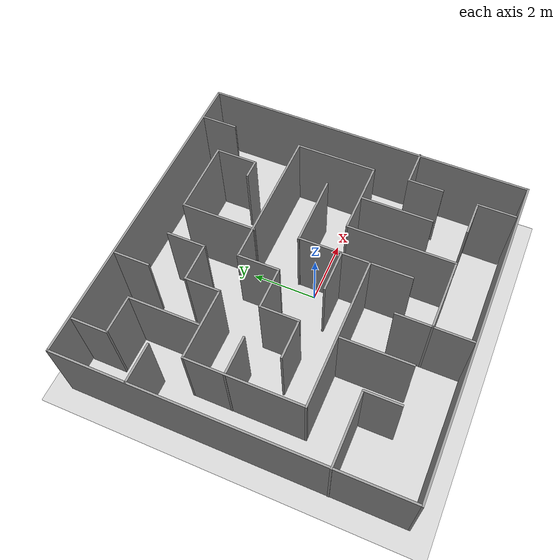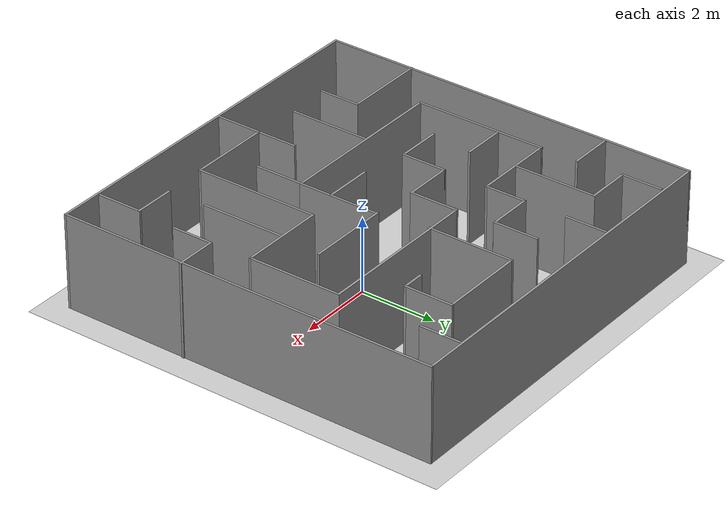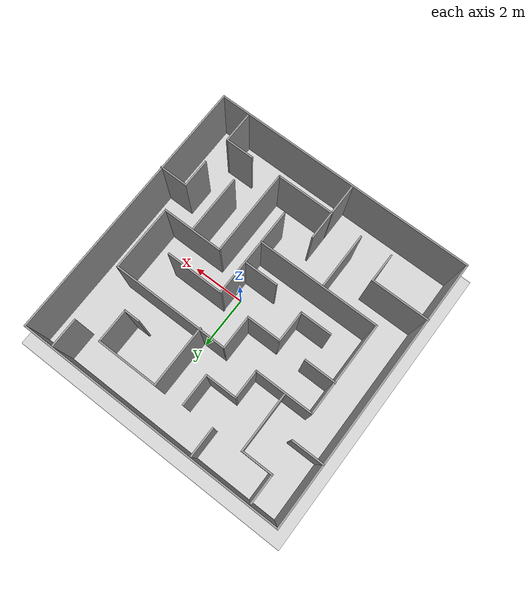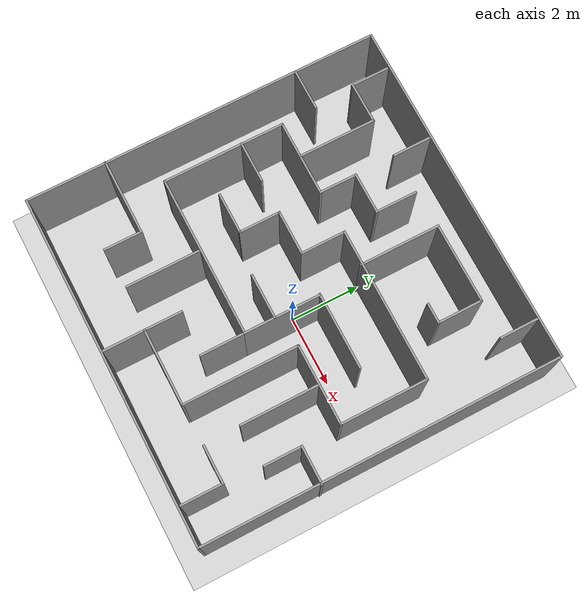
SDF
<?xml version='1.0' encoding='utf-8'?>
<sdf version="1.6">
  <world name="default">
    <light name="sun" type="directional">
      <cast_shadows>1</cast_shadows>
      <pose frame="">0 0 10 0 -0 0</pose>
      <diffuse>0.8 0.8 0.8 1</diffuse>
      <specular>0.2 0.2 0.2 1</specular>
      <attenuation>
        <range>1000</range>
        <constant>0.9</constant>
        <linear>0.01</linear>
        <quadratic>0.001</quadratic>
      </attenuation>
      <direction>-0.5 0.1 -0.9</direction>
    </light>
    <model name="ground_plane">
      <static>1</static>
      <link name="link">
        <collision name="collision">
          <geometry>
            <plane>
              <normal>0 0 1</normal>
              <size>100 100</size>
            </plane>
          </geometry>
          <surface>
            <friction>
              <ode>
                <mu>100</mu>
                <mu2>50</mu2>
              </ode>
              <torsional>
                <ode />
              </torsional>
            </friction>
            <contact>
              <ode />
            </contact>
            <bounce />
          </surface>
          <max_contacts>10</max_contacts>
        </collision>
        <visual name="visual">
          <cast_shadows>0</cast_shadows>
          <geometry>
            <plane>
              <normal>0 0 1</normal>
              <size>100 100</size>
            </plane>
          </geometry>
          <material>
            <script>
              <uri>file://media/materials/scripts/gazebo.material</uri>
              <name>Gazebo/Grey</name>
            </script>
          </material>
        </visual>
        <self_collide>0</self_collide>
        <enable_wind>0</enable_wind>
        <kinematic>0</kinematic>
      </link>
    </model>
    <gravity>0 0 -9.8</gravity>
    <magnetic_field>6e-06 2.3e-05 -4.2e-05</magnetic_field>
    <atmosphere type="adiabatic" />
    <physics name="default_physics" default="0" type="ode">
      <max_step_size>0.01</max_step_size>
      <real_time_factor>1</real_time_factor>
      <real_time_update_rate>100</real_time_update_rate>
    </physics>
    <scene>
      <ambient>0.4 0.4 0.4 1</ambient>
      <background>0.7 0.7 0.7 1</background>
      <shadows>1</shadows>
    </scene>
    <wind />
    <spherical_coordinates>
      <surface_model>EARTH_WGS84</surface_model>
      <latitude_deg>0</latitude_deg>
      <longitude_deg>0</longitude_deg>
      <elevation>0</elevation>
      <heading_deg>0</heading_deg>
    </spherical_coordinates>
    <model name="mazetest">
      <pose frame="">-0.464738 0.151607 0 0 -0 0</pose>
      <link name="Wall_10">
        <collision name="Wall_10_Collision">
          <geometry>
            <box>
              <size>10.2 0.06 2.5</size>
            </box>
          </geometry>
          <pose frame="">0 0 1.25 0 -0 0</pose>
          <max_contacts>10</max_contacts>
          <surface>
            <contact>
              <ode />
            </contact>
            <bounce />
            <friction>
              <torsional>
                <ode />
              </torsional>
              <ode />
            </friction>
          </surface>
        </collision>
        <visual name="Wall_10_Visual">
          <pose frame="">0 0 1.25 0 -0 0</pose>
          <geometry>
            <box>
              <size>10.2 0.06 2.5</size>
            </box>
          </geometry>
          <material>
            <script>
              <uri>file://media/materials/scripts/gazebo.material</uri>
              <name>Gazebo/Grey</name>
            </script>
            <ambient>1 1 1 1</ambient>
          </material>
          <meta>
            <layer>0</layer>
          </meta>
        </visual>
        <pose frame="">4.96244 0 0 0 0 -1.5708</pose>
        <self_collide>0</self_collide>
        <enable_wind>0</enable_wind>
        <kinematic>0</kinematic>
      </link>
      <link name="Wall_11">
        <collision name="Wall_11_Collision">
          <geometry>
            <box>
              <size>10 0.06 2.5</size>
            </box>
          </geometry>
          <pose frame="">0 0 1.25 0 -0 0</pose>
          <max_contacts>10</max_contacts>
          <surface>
            <contact>
              <ode />
            </contact>
            <bounce />
            <friction>
              <torsional>
                <ode />
              </torsional>
              <ode />
            </friction>
          </surface>
        </collision>
        <visual name="Wall_11_Visual">
          <pose frame="">0 0 1.25 0 -0 0</pose>
          <geometry>
            <box>
              <size>10 0.06 2.5</size>
            </box>
          </geometry>
          <material>
            <script>
              <uri>file://media/materials/scripts/gazebo.material</uri>
              <name>Gazebo/Grey</name>
            </script>
            <ambient>1 1 1 1</ambient>
          </material>
          <meta>
            <layer>0</layer>
          </meta>
        </visual>
        <pose frame="">-0.007571 -5.07 0 0 0 3.14159</pose>
        <self_collide>0</self_collide>
        <enable_wind>0</enable_wind>
        <kinematic>0</kinematic>
      </link>
      <link name="Wall_12">
        <collision name="Wall_12_Collision">
          <geometry>
            <box>
              <size>10.2 0.06 2.5</size>
            </box>
          </geometry>
          <pose frame="">0 0 1.25 0 -0 0</pose>
          <max_contacts>10</max_contacts>
          <surface>
            <contact>
              <ode />
            </contact>
            <bounce />
            <friction>
              <torsional>
                <ode />
              </torsional>
              <ode />
            </friction>
          </surface>
        </collision>
        <visual name="Wall_12_Visual">
          <pose frame="">0 0 1.25 0 -0 0</pose>
          <geometry>
            <box>
              <size>10.2 0.06 2.5</size>
            </box>
          </geometry>
          <material>
            <script>
              <uri>file://media/materials/scripts/gazebo.material</uri>
              <name>Gazebo/Grey</name>
            </script>
            <ambient>1 1 1 1</ambient>
          </material>
          <meta>
            <layer>0</layer>
          </meta>
        </visual>
        <pose frame="">-4.97756 0 0 0 0 1.5708</pose>
        <self_collide>0</self_collide>
        <enable_wind>0</enable_wind>
        <kinematic>0</kinematic>
      </link>
      <link name="Wall_14">
        <collision name="Wall_14_Collision">
          <geometry>
            <box>
              <size>1.1 0.06 2.5</size>
            </box>
          </geometry>
          <pose frame="">0 0 1.25 0 -0 0</pose>
          <max_contacts>10</max_contacts>
          <surface>
            <contact>
              <ode />
            </contact>
            <bounce />
            <friction>
              <torsional>
                <ode />
              </torsional>
              <ode />
            </friction>
          </surface>
        </collision>
        <visual name="Wall_14_Visual">
          <pose frame="">0 0 1.25 0 -0 0</pose>
          <geometry>
            <box>
              <size>1.1 0.06 2.5</size>
            </box>
          </geometry>
          <material>
            <script>
              <uri>file://media/materials/scripts/gazebo.material</uri>
              <name>Gazebo/Grey</name>
            </script>
            <ambient>1 1 1 1</ambient>
          </material>
          <meta>
            <layer>0</layer>
          </meta>
        </visual>
        <pose frame="">-3.930368 4.46508 0 0 0 -1.5708</pose>
        <self_collide>0</self_collide>
        <enable_wind>0</enable_wind>
        <kinematic>0</kinematic>
      </link>
      <link name="Wall_15">
        <collision name="Wall_15_Collision">
          <geometry>
            <box>
              <size>1.2 0.06 2.5</size>
            </box>
          </geometry>
          <pose frame="">0 0 1.25 0 -0 0</pose>
          <max_contacts>10</max_contacts>
          <surface>
            <contact>
              <ode />
            </contact>
            <bounce />
            <friction>
              <torsional>
                <ode />
              </torsional>
              <ode />
            </friction>
          </surface>
        </collision>
        <visual name="Wall_15_Visual">
          <pose frame="">0 0 1.25 0 -0 0</pose>
          <geometry>
            <box>
              <size>1.2 0.06 2.5</size>
            </box>
          </geometry>
          <material>
            <script>
              <uri>file://media/materials/scripts/gazebo.material</uri>
              <name>Gazebo/Grey</name>
            </script>
            <ambient>1 1 1 1</ambient>
          </material>
          <meta>
            <layer>0</layer>
          </meta>
        </visual>
        <pose frame="">-3.360368 3.945092 0 0 0 0</pose>
        <self_collide>0</self_collide>
        <enable_wind>0</enable_wind>
        <kinematic>0</kinematic>
      </link>
      <link name="Wall_16">
        <collision name="Wall_16_Collision">
          <geometry>
            <box>
              <size>2.2 0.06 2.5</size>
            </box>
          </geometry>
          <pose frame="">0 0 1.25 0 -0 0</pose>
          <max_contacts>10</max_contacts>
          <surface>
            <contact>
              <ode />
            </contact>
            <bounce />
            <friction>
              <torsional>
                <ode />
              </torsional>
              <ode />
            </friction>
          </surface>
        </collision>
        <visual name="Wall_16_Visual">
          <pose frame="">0 0 1.25 0 -0 0</pose>
          <geometry>
            <box>
              <size>2.2 0.06 2.5</size>
            </box>
          </geometry>
          <material>
            <script>
              <uri>file://media/materials/scripts/gazebo.material</uri>
              <name>Gazebo/Grey</name>
            </script>
            <ambient>1 1 1 1</ambient>
          </material>
          <meta>
            <layer>0</layer>
          </meta>
        </visual>
        <pose frame="">-2.790368 2.875092 0 0 0 -1.5708</pose>
        <self_collide>0</self_collide>
        <enable_wind>0</enable_wind>
        <kinematic>0</kinematic>
      </link>
      <link name="Wall_18">
        <collision name="Wall_18_Collision">
          <geometry>
            <box>
              <size>1.2 0.06 2.5</size>
            </box>
          </geometry>
          <pose frame="">0 0 1.25 0 -0 0</pose>
          <max_contacts>10</max_contacts>
          <surface>
            <contact>
              <ode />
            </contact>
            <bounce />
            <friction>
              <torsional>
                <ode />
              </torsional>
              <ode />
            </friction>
          </surface>
        </collision>
        <visual name="Wall_18_Visual">
          <pose frame="">0 0 1.25 0 -0 0</pose>
          <geometry>
            <box>
              <size>1.2 0.06 2.5</size>
            </box>
          </geometry>
          <material>
            <script>
              <uri>file://media/materials/scripts/gazebo.material</uri>
              <name>Gazebo/Grey</name>
            </script>
            <ambient>1 1 1 1</ambient>
          </material>
          <meta>
            <layer>0</layer>
          </meta>
        </visual>
        <pose frame="">-4.38732 2.777472 0 0 0 0</pose>
        <self_collide>0</self_collide>
        <enable_wind>0</enable_wind>
        <kinematic>0</kinematic>
      </link>
      <link name="Wall_20">
        <collision name="Wall_20_Collision">
          <geometry>
            <box>
              <size>1.2 0.06 2.5</size>
            </box>
          </geometry>
          <pose frame="">0 0 1.25 0 -0 0</pose>
          <max_contacts>10</max_contacts>
          <surface>
            <contact>
              <ode />
            </contact>
            <bounce />
            <friction>
              <torsional>
                <ode />
              </torsional>
              <ode />
            </friction>
          </surface>
        </collision>
        <visual name="Wall_20_Visual">
          <pose frame="">0 0 1.25 0 -0 0</pose>
          <geometry>
            <box>
              <size>1.2 0.06 2.5</size>
            </box>
          </geometry>
          <material>
            <script>
              <uri>file://media/materials/scripts/gazebo.material</uri>
              <name>Gazebo/Grey</name>
            </script>
            <ambient>1 1 1 1</ambient>
          </material>
          <meta>
            <layer>0</layer>
          </meta>
        </visual>
        <pose frame="">-0.523912 3.381988 0 0 0 -1.5708</pose>
        <self_collide>0</self_collide>
        <enable_wind>0</enable_wind>
        <kinematic>0</kinematic>
      </link>
      <link name="Wall_21">
        <collision name="Wall_21_Collision">
          <geometry>
            <box>
              <size>1.2 0.06 2.5</size>
            </box>
          </geometry>
          <pose frame="">0 0 1.25 0 -0 0</pose>
          <max_contacts>10</max_contacts>
          <surface>
            <contact>
              <ode />
            </contact>
            <bounce />
            <friction>
              <torsional>
                <ode />
              </torsional>
              <ode />
            </friction>
          </surface>
        </collision>
        <visual name="Wall_21_Visual">
          <pose frame="">0 0 1.25 0 -0 0</pose>
          <geometry>
            <box>
              <size>1.2 0.06 2.5</size>
            </box>
          </geometry>
          <material>
            <script>
              <uri>file://media/materials/scripts/gazebo.material</uri>
              <name>Gazebo/Grey</name>
            </script>
            <ambient>1 1 1 1</ambient>
          </material>
          <meta>
            <layer>0</layer>
          </meta>
        </visual>
        <pose frame="">-1.093912 2.811992 0 0 0 3.14159</pose>
        <self_collide>0</self_collide>
        <enable_wind>0</enable_wind>
        <kinematic>0</kinematic>
      </link>
      <link name="Wall_22">
        <collision name="Wall_22_Collision">
          <geometry>
            <box>
              <size>1.1 0.06 2.5</size>
            </box>
          </geometry>
          <pose frame="">0 0 1.25 0 -0 0</pose>
          <max_contacts>10</max_contacts>
          <surface>
            <contact>
              <ode />
            </contact>
            <bounce />
            <friction>
              <torsional>
                <ode />
              </torsional>
              <ode />
            </friction>
          </surface>
        </collision>
        <visual name="Wall_22_Visual">
          <pose frame="">0 0 1.25 0 -0 0</pose>
          <geometry>
            <box>
              <size>1.1 0.06 2.5</size>
            </box>
          </geometry>
          <material>
            <script>
              <uri>file://media/materials/scripts/gazebo.material</uri>
              <name>Gazebo/Grey</name>
            </script>
            <ambient>1 1 1 1</ambient>
          </material>
          <meta>
            <layer>0</layer>
          </meta>
        </visual>
        <pose frame="">-1.663912 2.291988 0 0 0 -1.5708</pose>
        <self_collide>0</self_collide>
        <enable_wind>0</enable_wind>
        <kinematic>0</kinematic>
      </link>
      <link name="Wall_23">
        <collision name="Wall_23_Collision">
          <geometry>
            <box>
              <size>2.2 0.06 2.5</size>
            </box>
          </geometry>
          <pose frame="">0 0 1.25 0 -0 0</pose>
          <max_contacts>10</max_contacts>
          <surface>
            <contact>
              <ode />
            </contact>
            <bounce />
            <friction>
              <torsional>
                <ode />
              </torsional>
              <ode />
            </friction>
          </surface>
        </collision>
        <visual name="Wall_23_Visual">
          <pose frame="">0 0 1.25 0 -0 0</pose>
          <geometry>
            <box>
              <size>2.2 0.06 2.5</size>
            </box>
          </geometry>
          <material>
            <script>
              <uri>file://media/materials/scripts/gazebo.material</uri>
              <name>Gazebo/Grey</name>
            </script>
            <ambient>1 1 1 1</ambient>
          </material>
          <meta>
            <layer>0</layer>
          </meta>
        </visual>
        <pose frame="">-2.733912 1.771988 0 0 0 3.14159</pose>
        <self_collide>0</self_collide>
        <enable_wind>0</enable_wind>
        <kinematic>0</kinematic>
      </link>
      <link name="Wall_24">
        <collision name="Wall_24_Collision">
          <geometry>
            <box>
              <size>3.5 0.06 2.5</size>
            </box>
          </geometry>
          <pose frame="">0 0 1.25 0 -0 0</pose>
          <max_contacts>10</max_contacts>
          <surface>
            <contact>
              <ode />
            </contact>
            <bounce />
            <friction>
              <torsional>
                <ode />
              </torsional>
              <ode />
            </friction>
          </surface>
        </collision>
        <visual name="Wall_24_Visual">
          <pose frame="">0 0 1.25 0 -0 0</pose>
          <geometry>
            <box>
              <size>3.5 0.06 2.5</size>
            </box>
          </geometry>
          <material>
            <script>
              <uri>file://media/materials/scripts/gazebo.material</uri>
              <name>Gazebo/Grey</name>
            </script>
            <ambient>1 1 1 1</ambient>
          </material>
          <meta>
            <layer>0</layer>
          </meta>
        </visual>
        <pose frame="">-3.803912 0.05199 0 0 0 -1.5708</pose>
        <self_collide>0</self_collide>
        <enable_wind>0</enable_wind>
        <kinematic>0</kinematic>
      </link>
      <link name="Wall_25">
        <collision name="Wall_25_Collision">
          <geometry>
            <box>
              <size>4.60472 0.06 2.5</size>
            </box>
          </geometry>
          <pose frame="">0 0 1.25 0 -0 0</pose>
          <max_contacts>10</max_contacts>
          <surface>
            <contact>
              <ode />
            </contact>
            <bounce />
            <friction>
              <torsional>
                <ode />
              </torsional>
              <ode />
            </friction>
          </surface>
        </collision>
        <visual name="Wall_25_Visual">
          <pose frame="">0 0 1.25 0 -0 0</pose>
          <geometry>
            <box>
              <size>4.60472 0.06 2.5</size>
            </box>
          </geometry>
          <material>
            <script>
              <uri>file://media/materials/scripts/gazebo.material</uri>
              <name>Gazebo/Grey</name>
            </script>
            <ambient>1 1 1 1</ambient>
          </material>
          <meta>
            <layer>0</layer>
          </meta>
        </visual>
        <pose frame="">-1.53156 -1.668008 0 0 0 0</pose>
        <self_collide>0</self_collide>
        <enable_wind>0</enable_wind>
        <kinematic>0</kinematic>
      </link>
      <link name="Wall_26">
        <collision name="Wall_26_Collision">
          <geometry>
            <box>
              <size>2.2 0.06 2.5</size>
            </box>
          </geometry>
          <pose frame="">0 0 1.25 0 -0 0</pose>
          <max_contacts>10</max_contacts>
          <surface>
            <contact>
              <ode />
            </contact>
            <bounce />
            <friction>
              <torsional>
                <ode />
              </torsional>
              <ode />
            </friction>
          </surface>
        </collision>
        <visual name="Wall_26_Visual">
          <pose frame="">0 0 1.25 0 -0 0</pose>
          <geometry>
            <box>
              <size>2.2 0.06 2.5</size>
            </box>
          </geometry>
          <material>
            <script>
              <uri>file://media/materials/scripts/gazebo.material</uri>
              <name>Gazebo/Grey</name>
            </script>
            <ambient>1 1 1 1</ambient>
          </material>
          <meta>
            <layer>0</layer>
          </meta>
        </visual>
        <pose frame="">0.759404 -0.598012 0 0 0 1.5708</pose>
        <self_collide>0</self_collide>
        <enable_wind>0</enable_wind>
        <kinematic>0</kinematic>
      </link>
      <link name="Wall_27">
        <collision name="Wall_27_Collision">
          <geometry>
            <box>
              <size>2.195296 0.06 2.5</size>
            </box>
          </geometry>
          <pose frame="">0 0 1.25 0 -0 0</pose>
          <max_contacts>10</max_contacts>
          <surface>
            <contact>
              <ode />
            </contact>
            <bounce />
            <friction>
              <torsional>
                <ode />
              </torsional>
              <ode />
            </friction>
          </surface>
        </collision>
        <visual name="Wall_27_Visual">
          <pose frame="">0 0 1.25 0 -0 0</pose>
          <geometry>
            <box>
              <size>2.195296 0.06 2.5</size>
            </box>
          </geometry>
          <material>
            <script>
              <uri>file://media/materials/scripts/gazebo.material</uri>
              <name>Gazebo/Grey</name>
            </script>
            <ambient>1 1 1 1</ambient>
          </material>
          <meta>
            <layer>0</layer>
          </meta>
        </visual>
        <pose frame="">1.80844 0.471988 0 0 0 0</pose>
        <self_collide>0</self_collide>
        <enable_wind>0</enable_wind>
        <kinematic>0</kinematic>
      </link>
      <link name="Wall_29">
        <collision name="Wall_29_Collision">
          <geometry>
            <box>
              <size>1.1 0.06 2.5</size>
            </box>
          </geometry>
          <pose frame="">0 0 1.25 0 -0 0</pose>
          <max_contacts>10</max_contacts>
          <surface>
            <contact>
              <ode />
            </contact>
            <bounce />
            <friction>
              <torsional>
                <ode />
              </torsional>
              <ode />
            </friction>
          </surface>
        </collision>
        <visual name="Wall_29_Visual">
          <pose frame="">0 0 1.25 0 -0 0</pose>
          <geometry>
            <box>
              <size>1.1 0.06 2.5</size>
            </box>
          </geometry>
          <material>
            <script>
              <uri>file://media/materials/scripts/gazebo.material</uri>
              <name>Gazebo/Grey</name>
            </script>
            <ambient>1 1 1 1</ambient>
          </material>
          <meta>
            <layer>0</layer>
          </meta>
        </visual>
        <pose frame="">-1.675824 4.48288 0 0 0 -1.5708</pose>
        <self_collide>0</self_collide>
        <enable_wind>0</enable_wind>
        <kinematic>0</kinematic>
      </link>
      <link name="Wall_31">
        <collision name="Wall_31_Collision">
          <geometry>
            <box>
              <size>1.2 0.06 2.5</size>
            </box>
          </geometry>
          <pose frame="">0 0 1.25 0 -0 0</pose>
          <max_contacts>10</max_contacts>
          <surface>
            <contact>
              <ode />
            </contact>
            <bounce />
            <friction>
              <torsional>
                <ode />
              </torsional>
              <ode />
            </friction>
          </surface>
        </collision>
        <visual name="Wall_31_Visual">
          <pose frame="">0 0 1.25 0 -0 0</pose>
          <geometry>
            <box>
              <size>1.2 0.06 2.5</size>
            </box>
          </geometry>
          <material>
            <script>
              <uri>file://media/materials/scripts/gazebo.material</uri>
              <name>Gazebo/Grey</name>
            </script>
            <ambient>1 1 1 1</ambient>
          </material>
          <meta>
            <layer>0</layer>
          </meta>
        </visual>
        <pose frame="">-3.242768 0.5734 0 0 0 0</pose>
        <self_collide>0</self_collide>
        <enable_wind>0</enable_wind>
        <kinematic>0</kinematic>
      </link>
      <link name="Wall_33">
        <collision name="Wall_33_Collision">
          <geometry>
            <box>
              <size>1.2 0.06 2.5</size>
            </box>
          </geometry>
          <pose frame="">0 0 1.25 0 -0 0</pose>
          <max_contacts>10</max_contacts>
          <surface>
            <contact>
              <ode />
            </contact>
            <bounce />
            <friction>
              <torsional>
                <ode />
              </torsional>
              <ode />
            </friction>
          </surface>
        </collision>
        <visual name="Wall_33_Visual">
          <pose frame="">0 0 1.25 0 -0 0</pose>
          <geometry>
            <box>
              <size>1.2 0.06 2.5</size>
            </box>
          </geometry>
          <material>
            <script>
              <uri>file://media/materials/scripts/gazebo.material</uri>
              <name>Gazebo/Grey</name>
            </script>
            <ambient>1 1 1 1</ambient>
          </material>
          <meta>
            <layer>0</layer>
          </meta>
        </visual>
        <pose frame="">-2.238376 -0.566884 0 0 0 0</pose>
        <self_collide>0</self_collide>
        <enable_wind>0</enable_wind>
        <kinematic>0</kinematic>
      </link>
      <link name="Wall_34">
        <collision name="Wall_34_Collision">
          <geometry>
            <box>
              <size>1.2 0.06 2.5</size>
            </box>
          </geometry>
          <pose frame="">0 0 1.25 0 -0 0</pose>
          <max_contacts>10</max_contacts>
          <surface>
            <contact>
              <ode />
            </contact>
            <bounce />
            <friction>
              <torsional>
                <ode />
              </torsional>
              <ode />
            </friction>
          </surface>
        </collision>
        <visual name="Wall_34_Visual">
          <pose frame="">0 0 1.25 0 -0 0</pose>
          <geometry>
            <box>
              <size>1.2 0.06 2.5</size>
            </box>
          </geometry>
          <material>
            <script>
              <uri>file://media/materials/scripts/gazebo.material</uri>
              <name>Gazebo/Grey</name>
            </script>
            <ambient>1 1 1 1</ambient>
          </material>
          <meta>
            <layer>0</layer>
          </meta>
        </visual>
        <pose frame="">-1.668376 0.003116 0 0 0 1.5708</pose>
        <self_collide>0</self_collide>
        <enable_wind>0</enable_wind>
        <kinematic>0</kinematic>
      </link>
      <link name="Wall_35">
        <collision name="Wall_35_Collision">
          <geometry>
            <box>
              <size>1.3 0.06 2.5</size>
            </box>
          </geometry>
          <pose frame="">0 0 1.25 0 -0 0</pose>
          <max_contacts>10</max_contacts>
          <surface>
            <contact>
              <ode />
            </contact>
            <bounce />
            <friction>
              <torsional>
                <ode />
              </torsional>
              <ode />
            </friction>
          </surface>
        </collision>
        <visual name="Wall_35_Visual">
          <pose frame="">0 0 1.25 0 -0 0</pose>
          <geometry>
            <box>
              <size>1.3 0.06 2.5</size>
            </box>
          </geometry>
          <material>
            <script>
              <uri>file://media/materials/scripts/gazebo.material</uri>
              <name>Gazebo/Grey</name>
            </script>
            <ambient>1 1 1 1</ambient>
          </material>
          <meta>
            <layer>0</layer>
          </meta>
        </visual>
        <pose frame="">-1.048376 0.573116 0 0 0 0</pose>
        <self_collide>0</self_collide>
        <enable_wind>0</enable_wind>
        <kinematic>0</kinematic>
      </link>
      <link name="Wall_36">
        <collision name="Wall_36_Collision">
          <geometry>
            <box>
              <size>1.3 0.06 2.5</size>
            </box>
          </geometry>
          <pose frame="">0 0 1.25 0 -0 0</pose>
          <max_contacts>10</max_contacts>
          <surface>
            <contact>
              <ode />
            </contact>
            <bounce />
            <friction>
              <torsional>
                <ode />
              </torsional>
              <ode />
            </friction>
          </surface>
        </collision>
        <visual name="Wall_36_Visual">
          <pose frame="">0 0 1.25 0 -0 0</pose>
          <geometry>
            <box>
              <size>1.3 0.06 2.5</size>
            </box>
          </geometry>
          <material>
            <script>
              <uri>file://media/materials/scripts/gazebo.material</uri>
              <name>Gazebo/Grey</name>
            </script>
            <ambient>1 1 1 1</ambient>
          </material>
          <meta>
            <layer>0</layer>
          </meta>
        </visual>
        <pose frame="">-0.428376 1.193116 0 0 0 1.5708</pose>
        <self_collide>0</self_collide>
        <enable_wind>0</enable_wind>
        <kinematic>0</kinematic>
      </link>
      <link name="Wall_37">
        <collision name="Wall_37_Collision">
          <geometry>
            <box>
              <size>4.4 0.06 2.5</size>
            </box>
          </geometry>
          <pose frame="">0 0 1.25 0 -0 0</pose>
          <max_contacts>10</max_contacts>
          <surface>
            <contact>
              <ode />
            </contact>
            <bounce />
            <friction>
              <torsional>
                <ode />
              </torsional>
              <ode />
            </friction>
          </surface>
        </collision>
        <visual name="Wall_37_Visual">
          <pose frame="">0 0 1.25 0 -0 0</pose>
          <geometry>
            <box>
              <size>4.4 0.06 2.5</size>
            </box>
          </geometry>
          <material>
            <script>
              <uri>file://media/materials/scripts/gazebo.material</uri>
              <name>Gazebo/Grey</name>
            </script>
            <ambient>1 1 1 1</ambient>
          </material>
          <meta>
            <layer>0</layer>
          </meta>
        </visual>
        <pose frame="">1.741624 1.813116 0 0 0 0</pose>
        <self_collide>0</self_collide>
        <enable_wind>0</enable_wind>
        <kinematic>0</kinematic>
      </link>
      <link name="Wall_38">
        <collision name="Wall_38_Collision">
          <geometry>
            <box>
              <size>2.5 0.06 2.5</size>
            </box>
          </geometry>
          <pose frame="">0 0 1.25 0 -0 0</pose>
          <max_contacts>10</max_contacts>
          <surface>
            <contact>
              <ode />
            </contact>
            <bounce />
            <friction>
              <torsional>
                <ode />
              </torsional>
              <ode />
            </friction>
          </surface>
        </collision>
        <visual name="Wall_38_Visual">
          <pose frame="">0 0 1.25 0 -0 0</pose>
          <geometry>
            <box>
              <size>2.5 0.06 2.5</size>
            </box>
          </geometry>
          <material>
            <script>
              <uri>file://media/materials/scripts/gazebo.material</uri>
              <name>Gazebo/Grey</name>
            </script>
            <ambient>1 1 1 1</ambient>
          </material>
          <meta>
            <layer>0</layer>
          </meta>
        </visual>
        <pose frame="">3.911624 0.593116 0 0 0 -1.5708</pose>
        <self_collide>0</self_collide>
        <enable_wind>0</enable_wind>
        <kinematic>0</kinematic>
      </link>
      <link name="Wall_39">
        <collision name="Wall_39_Collision">
          <geometry>
            <box>
              <size>2.3 0.06 2.5</size>
            </box>
          </geometry>
          <pose frame="">0 0 1.25 0 -0 0</pose>
          <max_contacts>10</max_contacts>
          <surface>
            <contact>
              <ode />
            </contact>
            <bounce />
            <friction>
              <torsional>
                <ode />
              </torsional>
              <ode />
            </friction>
          </surface>
        </collision>
        <visual name="Wall_39_Visual">
          <pose frame="">0 0 1.25 0 -0 0</pose>
          <geometry>
            <box>
              <size>2.3 0.06 2.5</size>
            </box>
          </geometry>
          <material>
            <script>
              <uri>file://media/materials/scripts/gazebo.material</uri>
              <name>Gazebo/Grey</name>
            </script>
            <ambient>1 1 1 1</ambient>
          </material>
          <meta>
            <layer>0</layer>
          </meta>
        </visual>
        <pose frame="">2.791624 -0.626884 0 0 0 3.14159</pose>
        <self_collide>0</self_collide>
        <enable_wind>0</enable_wind>
        <kinematic>0</kinematic>
      </link>
      <link name="Wall_40">
        <collision name="Wall_40_Collision">
          <geometry>
            <box>
              <size>3.3 0.06 2.5</size>
            </box>
          </geometry>
          <pose frame="">0 0 1.25 0 -0 0</pose>
          <max_contacts>10</max_contacts>
          <surface>
            <contact>
              <ode />
            </contact>
            <bounce />
            <friction>
              <torsional>
                <ode />
              </torsional>
              <ode />
            </friction>
          </surface>
        </collision>
        <visual name="Wall_40_Visual">
          <pose frame="">0 0 1.25 0 -0 0</pose>
          <geometry>
            <box>
              <size>3.3 0.06 2.5</size>
            </box>
          </geometry>
          <material>
            <script>
              <uri>file://media/materials/scripts/gazebo.material</uri>
              <name>Gazebo/Grey</name>
            </script>
            <ambient>1 1 1 1</ambient>
          </material>
          <meta>
            <layer>0</layer>
          </meta>
        </visual>
        <pose frame="">1.671624 -2.246884 0 0 0 -1.5708</pose>
        <self_collide>0</self_collide>
        <enable_wind>0</enable_wind>
        <kinematic>0</kinematic>
      </link>
      <link name="Wall_41">
        <collision name="Wall_41_Collision">
          <geometry>
            <box>
              <size>2.2 0.06 2.5</size>
            </box>
          </geometry>
          <pose frame="">0 0 1.25 0 -0 0</pose>
          <max_contacts>10</max_contacts>
          <surface>
            <contact>
              <ode />
            </contact>
            <bounce />
            <friction>
              <torsional>
                <ode />
              </torsional>
              <ode />
            </friction>
          </surface>
        </collision>
        <visual name="Wall_41_Visual">
          <pose frame="">0 0 1.25 0 -0 0</pose>
          <geometry>
            <box>
              <size>2.2 0.06 2.5</size>
            </box>
          </geometry>
          <material>
            <script>
              <uri>file://media/materials/scripts/gazebo.material</uri>
              <name>Gazebo/Grey</name>
            </script>
            <ambient>1 1 1 1</ambient>
          </material>
          <meta>
            <layer>0</layer>
          </meta>
        </visual>
        <pose frame="">0.601624 -3.866884 0 0 0 3.14159</pose>
        <self_collide>0</self_collide>
        <enable_wind>0</enable_wind>
        <kinematic>0</kinematic>
      </link>
      <link name="Wall_42">
        <collision name="Wall_42_Collision">
          <geometry>
            <box>
              <size>1.1 0.06 2.5</size>
            </box>
          </geometry>
          <pose frame="">0 0 1.25 0 -0 0</pose>
          <max_contacts>10</max_contacts>
          <surface>
            <contact>
              <ode />
            </contact>
            <bounce />
            <friction>
              <torsional>
                <ode />
              </torsional>
              <ode />
            </friction>
          </surface>
        </collision>
        <visual name="Wall_42_Visual">
          <pose frame="">0 0 1.25 0 -0 0</pose>
          <geometry>
            <box>
              <size>1.1 0.06 2.5</size>
            </box>
          </geometry>
          <material>
            <script>
              <uri>file://media/materials/scripts/gazebo.material</uri>
              <name>Gazebo/Grey</name>
            </script>
            <ambient>1 1 1 1</ambient>
          </material>
          <meta>
            <layer>0</layer>
          </meta>
        </visual>
        <pose frame="">-0.468376 -3.346884 0 0 0 1.5708</pose>
        <self_collide>0</self_collide>
        <enable_wind>0</enable_wind>
        <kinematic>0</kinematic>
      </link>
      <link name="Wall_44">
        <collision name="Wall_44_Collision">
          <geometry>
            <box>
              <size>2.3 0.06 2.5</size>
            </box>
          </geometry>
          <pose frame="">0 0 1.25 0 -0 0</pose>
          <max_contacts>10</max_contacts>
          <surface>
            <contact>
              <ode />
            </contact>
            <bounce />
            <friction>
              <torsional>
                <ode />
              </torsional>
              <ode />
            </friction>
          </surface>
        </collision>
        <visual name="Wall_44_Visual">
          <pose frame="">0 0 1.25 0 -0 0</pose>
          <geometry>
            <box>
              <size>2.3 0.06 2.5</size>
            </box>
          </geometry>
          <material>
            <script>
              <uri>file://media/materials/scripts/gazebo.material</uri>
              <name>Gazebo/Grey</name>
            </script>
            <ambient>1 1 1 1</ambient>
          </material>
          <meta>
            <layer>0</layer>
          </meta>
        </visual>
        <pose frame="">0.543988 2.897644 0 0 0 1.5708</pose>
        <self_collide>0</self_collide>
        <enable_wind>0</enable_wind>
        <kinematic>0</kinematic>
      </link>
      <link name="Wall_45">
        <collision name="Wall_45_Collision">
          <geometry>
            <box>
              <size>2.3 0.06 2.5</size>
            </box>
          </geometry>
          <pose frame="">0 0 1.25 0 -0 0</pose>
          <max_contacts>10</max_contacts>
          <surface>
            <contact>
              <ode />
            </contact>
            <bounce />
            <friction>
              <torsional>
                <ode />
              </torsional>
              <ode />
            </friction>
          </surface>
        </collision>
        <visual name="Wall_45_Visual">
          <pose frame="">0 0 1.25 0 -0 0</pose>
          <geometry>
            <box>
              <size>2.3 0.06 2.5</size>
            </box>
          </geometry>
          <material>
            <script>
              <uri>file://media/materials/scripts/gazebo.material</uri>
              <name>Gazebo/Grey</name>
            </script>
            <ambient>1 1 1 1</ambient>
          </material>
          <meta>
            <layer>0</layer>
          </meta>
        </visual>
        <pose frame="">1.663988 4.01764 0 0 0 0</pose>
        <self_collide>0</self_collide>
        <enable_wind>0</enable_wind>
        <kinematic>0</kinematic>
      </link>
      <link name="Wall_46">
        <collision name="Wall_46_Collision">
          <geometry>
            <box>
              <size>1.3 0.06 2.5</size>
            </box>
          </geometry>
          <pose frame="">0 0 1.25 0 -0 0</pose>
          <max_contacts>10</max_contacts>
          <surface>
            <contact>
              <ode />
            </contact>
            <bounce />
            <friction>
              <torsional>
                <ode />
              </torsional>
              <ode />
            </friction>
          </surface>
        </collision>
        <visual name="Wall_46_Visual">
          <pose frame="">0 0 1.25 0 -0 0</pose>
          <geometry>
            <box>
              <size>1.3 0.06 2.5</size>
            </box>
          </geometry>
          <material>
            <script>
              <uri>file://media/materials/scripts/gazebo.material</uri>
              <name>Gazebo/Grey</name>
            </script>
            <ambient>1 1 1 1</ambient>
          </material>
          <meta>
            <layer>0</layer>
          </meta>
        </visual>
        <pose frame="">2.783988 3.397648 0 0 0 -1.5708</pose>
        <self_collide>0</self_collide>
        <enable_wind>0</enable_wind>
        <kinematic>0</kinematic>
      </link>
      <link name="Wall_47">
        <collision name="Wall_47_Collision">
          <geometry>
            <box>
              <size>0.6 0.06 2.5</size>
            </box>
          </geometry>
          <pose frame="">0 0 1.25 0 -0 0</pose>
          <max_contacts>10</max_contacts>
          <surface>
            <contact>
              <ode />
            </contact>
            <bounce />
            <friction>
              <torsional>
                <ode />
              </torsional>
              <ode />
            </friction>
          </surface>
        </collision>
        <visual name="Wall_47_Visual">
          <pose frame="">0 0 1.25 0 -0 0</pose>
          <geometry>
            <box>
              <size>0.6 0.06 2.5</size>
            </box>
          </geometry>
          <material>
            <script>
              <uri>file://media/materials/scripts/gazebo.material</uri>
              <name>Gazebo/Grey</name>
            </script>
            <ambient>1 1 1 1</ambient>
          </material>
          <meta>
            <layer>0</layer>
          </meta>
        </visual>
        <pose frame="">2.513988 2.777648 0 0 0 3.14159</pose>
        <self_collide>0</self_collide>
        <enable_wind>0</enable_wind>
        <kinematic>0</kinematic>
      </link>
      <link name="Wall_50">
        <collision name="Wall_50_Collision">
          <geometry>
            <box>
              <size>1.1 0.06 2.5</size>
            </box>
          </geometry>
          <pose frame="">0 0 1.25 0 -0 0</pose>
          <max_contacts>10</max_contacts>
          <surface>
            <contact>
              <ode />
            </contact>
            <bounce />
            <friction>
              <torsional>
                <ode />
              </torsional>
              <ode />
            </friction>
          </surface>
        </collision>
        <visual name="Wall_50_Visual">
          <pose frame="">0 0 1.25 0 -0 0</pose>
          <geometry>
            <box>
              <size>1.1 0.06 2.5</size>
            </box>
          </geometry>
          <material>
            <script>
              <uri>file://media/materials/scripts/gazebo.material</uri>
              <name>Gazebo/Grey</name>
            </script>
            <ambient>1 1 1 1</ambient>
          </material>
          <meta>
            <layer>0</layer>
          </meta>
        </visual>
        <pose frame="">3.849004 4.4928 0 0 0 -1.5708</pose>
        <self_collide>0</self_collide>
        <enable_wind>0</enable_wind>
        <kinematic>0</kinematic>
      </link>
      <link name="Wall_52">
        <collision name="Wall_52_Collision">
          <geometry>
            <box>
              <size>2.2 0.06 2.5</size>
            </box>
          </geometry>
          <pose frame="">0 0 1.25 0 -0 0</pose>
          <max_contacts>10</max_contacts>
          <surface>
            <contact>
              <ode />
            </contact>
            <bounce />
            <friction>
              <torsional>
                <ode />
              </torsional>
              <ode />
            </friction>
          </surface>
        </collision>
        <visual name="Wall_52_Visual">
          <pose frame="">0 0 1.25 0 -0 0</pose>
          <geometry>
            <box>
              <size>2.2 0.06 2.5</size>
            </box>
          </geometry>
          <material>
            <script>
              <uri>file://media/materials/scripts/gazebo.material</uri>
              <name>Gazebo/Grey</name>
            </script>
            <ambient>1 1 1 1</ambient>
          </material>
          <meta>
            <layer>0</layer>
          </meta>
        </visual>
        <pose frame="">2.788852 -1.748532 0 0 0 -1.5708</pose>
        <self_collide>0</self_collide>
        <enable_wind>0</enable_wind>
        <kinematic>0</kinematic>
      </link>
      <link name="Wall_54">
        <collision name="Wall_54_Collision">
          <geometry>
            <box>
              <size>1.1 0.06 2.5</size>
            </box>
          </geometry>
          <pose frame="">0 0 1.25 0 -0 0</pose>
          <max_contacts>10</max_contacts>
          <surface>
            <contact>
              <ode />
            </contact>
            <bounce />
            <friction>
              <torsional>
                <ode />
              </torsional>
              <ode />
            </friction>
          </surface>
        </collision>
        <visual name="Wall_54_Visual">
          <pose frame="">0 0 1.25 0 -0 0</pose>
          <geometry>
            <box>
              <size>1.1 0.06 2.5</size>
            </box>
          </geometry>
          <material>
            <script>
              <uri>file://media/materials/scripts/gazebo.material</uri>
              <name>Gazebo/Grey</name>
            </script>
            <ambient>1 1 1 1</ambient>
          </material>
          <meta>
            <layer>0</layer>
          </meta>
        </visual>
        <pose frame="">4.4682 -1.724672 0 0 0 3.14159</pose>
        <self_collide>0</self_collide>
        <enable_wind>0</enable_wind>
        <kinematic>0</kinematic>
      </link>
      <link name="Wall_55">
        <collision name="Wall_55_Collision">
          <geometry>
            <box>
              <size>1.1 0.06 2.5</size>
            </box>
          </geometry>
          <pose frame="">0 0 1.25 0 -0 0</pose>
          <max_contacts>10</max_contacts>
          <surface>
            <contact>
              <ode />
            </contact>
            <bounce />
            <friction>
              <torsional>
                <ode />
              </torsional>
              <ode />
            </friction>
          </surface>
        </collision>
        <visual name="Wall_55_Visual">
          <pose frame="">0 0 1.25 0 -0 0</pose>
          <geometry>
            <box>
              <size>1.1 0.06 2.5</size>
            </box>
          </geometry>
          <material>
            <script>
              <uri>file://media/materials/scripts/gazebo.material</uri>
              <name>Gazebo/Grey</name>
            </script>
            <ambient>1 1 1 1</ambient>
          </material>
          <meta>
            <layer>0</layer>
          </meta>
        </visual>
        <pose frame="">3.948192 -2.244672 0 0 0 -1.5708</pose>
        <self_collide>0</self_collide>
        <enable_wind>0</enable_wind>
        <kinematic>0</kinematic>
      </link>
      <link name="Wall_57">
        <collision name="Wall_57_Collision">
          <geometry>
            <box>
              <size>1.1 0.06 2.5</size>
            </box>
          </geometry>
          <pose frame="">0 0 1.25 0 -0 0</pose>
          <max_contacts>10</max_contacts>
          <surface>
            <contact>
              <ode />
            </contact>
            <bounce />
            <friction>
              <torsional>
                <ode />
              </torsional>
              <ode />
            </friction>
          </surface>
        </collision>
        <visual name="Wall_57_Visual">
          <pose frame="">0 0 1.25 0 -0 0</pose>
          <geometry>
            <box>
              <size>1.1 0.06 2.5</size>
            </box>
          </geometry>
          <material>
            <script>
              <uri>file://media/materials/scripts/gazebo.material</uri>
              <name>Gazebo/Grey</name>
            </script>
            <ambient>1 1 1 1</ambient>
          </material>
          <meta>
            <layer>0</layer>
          </meta>
        </visual>
        <pose frame="">3.343384 -3.849976 0 0 0 0</pose>
        <self_collide>0</self_collide>
        <enable_wind>0</enable_wind>
        <kinematic>0</kinematic>
      </link>
      <link name="Wall_58">
        <collision name="Wall_58_Collision">
          <geometry>
            <box>
              <size>1.2 0.06 2.5</size>
            </box>
          </geometry>
          <pose frame="">0 0 1.25 0 -0 0</pose>
          <max_contacts>10</max_contacts>
          <surface>
            <contact>
              <ode />
            </contact>
            <bounce />
            <friction>
              <torsional>
                <ode />
              </torsional>
              <ode />
            </friction>
          </surface>
        </collision>
        <visual name="Wall_58_Visual">
          <pose frame="">0 0 1.25 0 -0 0</pose>
          <geometry>
            <box>
              <size>1.2 0.06 2.5</size>
            </box>
          </geometry>
          <material>
            <script>
              <uri>file://media/materials/scripts/gazebo.material</uri>
              <name>Gazebo/Grey</name>
            </script>
            <ambient>1 1 1 1</ambient>
          </material>
          <meta>
            <layer>0</layer>
          </meta>
        </visual>
        <pose frame="">3.863384 -4.41996 0 0 0 -1.5708</pose>
        <self_collide>0</self_collide>
        <enable_wind>0</enable_wind>
        <kinematic>0</kinematic>
      </link>
      <link name="Wall_60">
        <collision name="Wall_60_Collision">
          <geometry>
            <box>
              <size>1.2 0.06 2.5</size>
            </box>
          </geometry>
          <pose frame="">0 0 1.25 0 -0 0</pose>
          <max_contacts>10</max_contacts>
          <surface>
            <contact>
              <ode />
            </contact>
            <bounce />
            <friction>
              <torsional>
                <ode />
              </torsional>
              <ode />
            </friction>
          </surface>
        </collision>
        <visual name="Wall_60_Visual">
          <pose frame="">0 0 1.25 0 -0 0</pose>
          <geometry>
            <box>
              <size>1.2 0.06 2.5</size>
            </box>
          </geometry>
          <material>
            <script>
              <uri>file://media/materials/scripts/gazebo.material</uri>
              <name>Gazebo/Grey</name>
            </script>
            <ambient>1 1 1 1</ambient>
          </material>
          <meta>
            <layer>0</layer>
          </meta>
        </visual>
        <pose frame="">-0.468376 -4.43688 0 0 0 -1.5708</pose>
        <self_collide>0</self_collide>
        <enable_wind>0</enable_wind>
        <kinematic>0</kinematic>
      </link>
      <link name="Wall_62">
        <collision name="Wall_62_Collision">
          <geometry>
            <box>
              <size>2.2 0.06 2.5</size>
            </box>
          </geometry>
          <pose frame="">0 0 1.25 0 -0 0</pose>
          <max_contacts>10</max_contacts>
          <surface>
            <contact>
              <ode />
            </contact>
            <bounce />
            <friction>
              <torsional>
                <ode />
              </torsional>
              <ode />
            </friction>
          </surface>
        </collision>
        <visual name="Wall_62_Visual">
          <pose frame="">0 0 1.25 0 -0 0</pose>
          <geometry>
            <box>
              <size>2.2 0.06 2.5</size>
            </box>
          </geometry>
          <material>
            <script>
              <uri>file://media/materials/scripts/gazebo.material</uri>
              <name>Gazebo/Grey</name>
            </script>
            <ambient>1 1 1 1</ambient>
          </material>
          <meta>
            <layer>0</layer>
          </meta>
        </visual>
        <pose frame="">-3.918192 -2.808428 0 0 0 0</pose>
        <self_collide>0</self_collide>
        <enable_wind>0</enable_wind>
        <kinematic>0</kinematic>
      </link>
      <link name="Wall_63">
        <collision name="Wall_63_Collision">
          <geometry>
            <box>
              <size>1.1 0.06 2.5</size>
            </box>
          </geometry>
          <pose frame="">0 0 1.25 0 -0 0</pose>
          <max_contacts>10</max_contacts>
          <surface>
            <contact>
              <ode />
            </contact>
            <bounce />
            <friction>
              <torsional>
                <ode />
              </torsional>
              <ode />
            </friction>
          </surface>
        </collision>
        <visual name="Wall_63_Visual">
          <pose frame="">0 0 1.25 0 -0 0</pose>
          <geometry>
            <box>
              <size>1.1 0.06 2.5</size>
            </box>
          </geometry>
          <material>
            <script>
              <uri>file://media/materials/scripts/gazebo.material</uri>
              <name>Gazebo/Grey</name>
            </script>
            <ambient>1 1 1 1</ambient>
          </material>
          <meta>
            <layer>0</layer>
          </meta>
        </visual>
        <pose frame="">-2.848192 -3.328432 0 0 0 -1.5708</pose>
        <self_collide>0</self_collide>
        <enable_wind>0</enable_wind>
        <kinematic>0</kinematic>
      </link>
      <link name="Wall_66">
        <collision name="Wall_66_Collision">
          <geometry>
            <box>
              <size>2.1 0.06 2.5</size>
            </box>
          </geometry>
          <pose frame="">0 0 1.25 0 -0 0</pose>
          <max_contacts>10</max_contacts>
          <surface>
            <contact>
              <ode />
            </contact>
            <bounce />
            <friction>
              <torsional>
                <ode />
              </torsional>
              <ode />
            </friction>
          </surface>
        </collision>
        <visual name="Wall_66_Visual">
          <pose frame="">0 0 1.25 0 -0 0</pose>
          <geometry>
            <box>
              <size>2.1 0.06 2.5</size>
            </box>
          </geometry>
          <material>
            <script>
              <uri>file://media/materials/scripts/gazebo.material</uri>
              <name>Gazebo/Grey</name>
            </script>
            <ambient>1 1 1 1</ambient>
          </material>
          <meta>
            <layer>0</layer>
          </meta>
        </visual>
        <pose frame="">-1.70082 -2.754336 0 0 0 -1.5708</pose>
        <self_collide>0</self_collide>
        <enable_wind>0</enable_wind>
        <kinematic>0</kinematic>
      </link>
      <link name="Wall_68">
        <collision name="Wall_68_Collision">
          <geometry>
            <box>
              <size>1.3 0.06 2.5</size>
            </box>
          </geometry>
          <pose frame="">0 0 1.25 0 -0 0</pose>
          <max_contacts>10</max_contacts>
          <surface>
            <contact>
              <ode />
            </contact>
            <bounce />
            <friction>
              <torsional>
                <ode />
              </torsional>
              <ode />
            </friction>
          </surface>
        </collision>
        <visual name="Wall_68_Visual">
          <pose frame="">0 0 1.25 0 -0 0</pose>
          <geometry>
            <box>
              <size>1.3 0.06 2.5</size>
            </box>
          </geometry>
          <material>
            <script>
              <uri>file://media/materials/scripts/gazebo.material</uri>
              <name>Gazebo/Grey</name>
            </script>
            <ambient>1 1 1 1</ambient>
          </material>
          <meta>
            <layer>0</layer>
          </meta>
        </visual>
        <pose frame="">0.759404 -2.288008 0 0 0 -1.5708</pose>
        <self_collide>0</self_collide>
        <enable_wind>0</enable_wind>
        <kinematic>0</kinematic>
      </link>
      <link name="Wall_70">
        <collision name="Wall_70_Collision">
          <geometry>
            <box>
              <size>1.3 0.06 2.5</size>
            </box>
          </geometry>
          <pose frame="">0 0 1.25 0 -0 0</pose>
          <max_contacts>10</max_contacts>
          <surface>
            <contact>
              <ode />
            </contact>
            <bounce />
            <friction>
              <torsional>
                <ode />
              </torsional>
              <ode />
            </friction>
          </surface>
        </collision>
        <visual name="Wall_70_Visual">
          <pose frame="">0 0 1.25 0 -0 0</pose>
          <geometry>
            <box>
              <size>1.3 0.06 2.5</size>
            </box>
          </geometry>
          <material>
            <script>
              <uri>file://media/materials/scripts/gazebo.material</uri>
              <name>Gazebo/Grey</name>
            </script>
            <ambient>1 1 1 1</ambient>
          </material>
          <meta>
            <layer>0</layer>
          </meta>
        </visual>
        <pose frame="">0.128727 -0.81616 0 0 0 3.14159</pose>
        <self_collide>0</self_collide>
        <enable_wind>0</enable_wind>
        <kinematic>0</kinematic>
      </link>
      <link name="Wall_9">
        <collision name="Wall_9_Collision">
          <geometry>
            <box>
              <size>10 0.06 2.5</size>
            </box>
          </geometry>
          <pose frame="">0 0 1.25 0 -0 0</pose>
          <max_contacts>10</max_contacts>
          <surface>
            <contact>
              <ode />
            </contact>
            <bounce />
            <friction>
              <torsional>
                <ode />
              </torsional>
              <ode />
            </friction>
          </surface>
        </collision>
        <visual name="Wall_9_Visual">
          <pose frame="">0 0 1.25 0 -0 0</pose>
          <geometry>
            <box>
              <size>10 0.06 2.5</size>
            </box>
          </geometry>
          <material>
            <script>
              <uri>file://media/materials/scripts/gazebo.material</uri>
              <name>Gazebo/Grey</name>
            </script>
            <ambient>1 1 1 1</ambient>
          </material>
          <meta>
            <layer>0</layer>
          </meta>
        </visual>
        <pose frame="">-0.007571 5.07 0 0 0 0</pose>
        <self_collide>0</self_collide>
        <enable_wind>0</enable_wind>
        <kinematic>0</kinematic>
      </link>
      <static>1</static>
    </model>
    <gui fullscreen="0">
      <camera name="user_camera">
        <pose frame="">0.657401 1.08681 49.1753 -2e-06 1.5698 1.5562</pose>
        <view_controller>orbit</view_controller>
        <projection_type>perspective</projection_type>
      </camera>
    </gui>
  </world>
</sdf>
